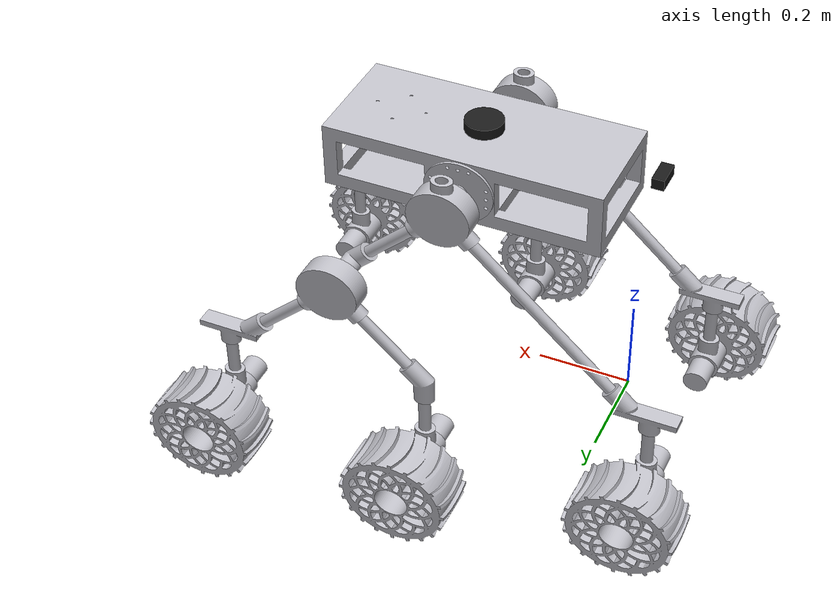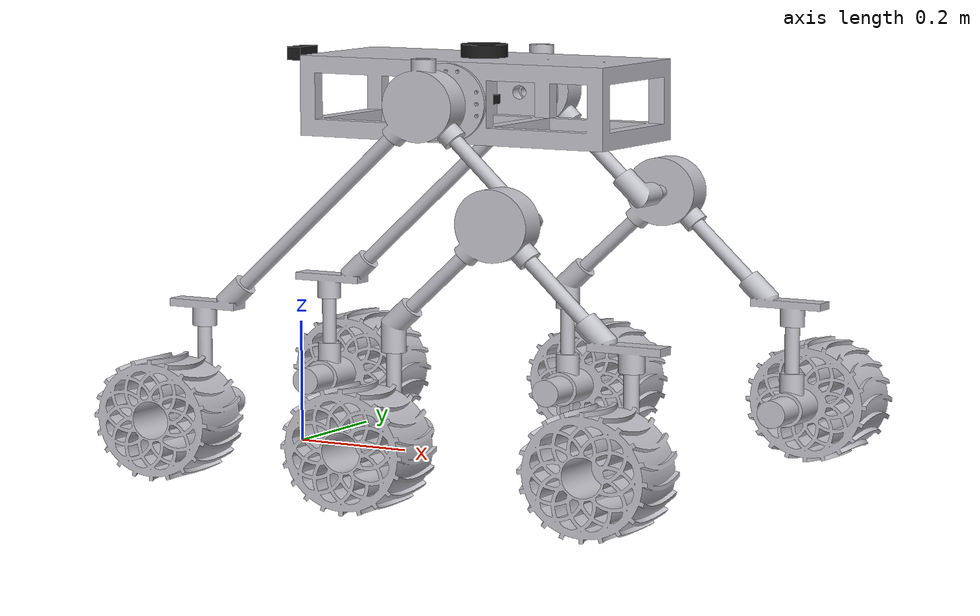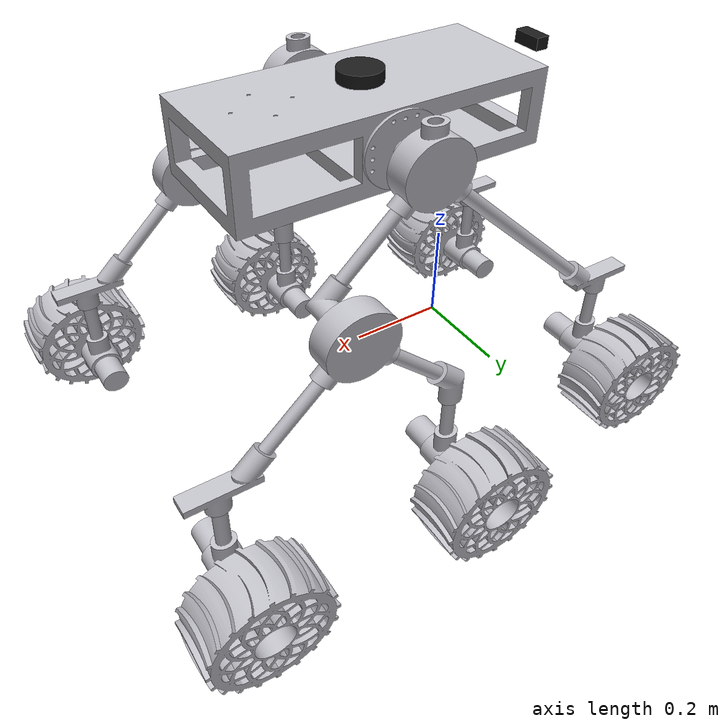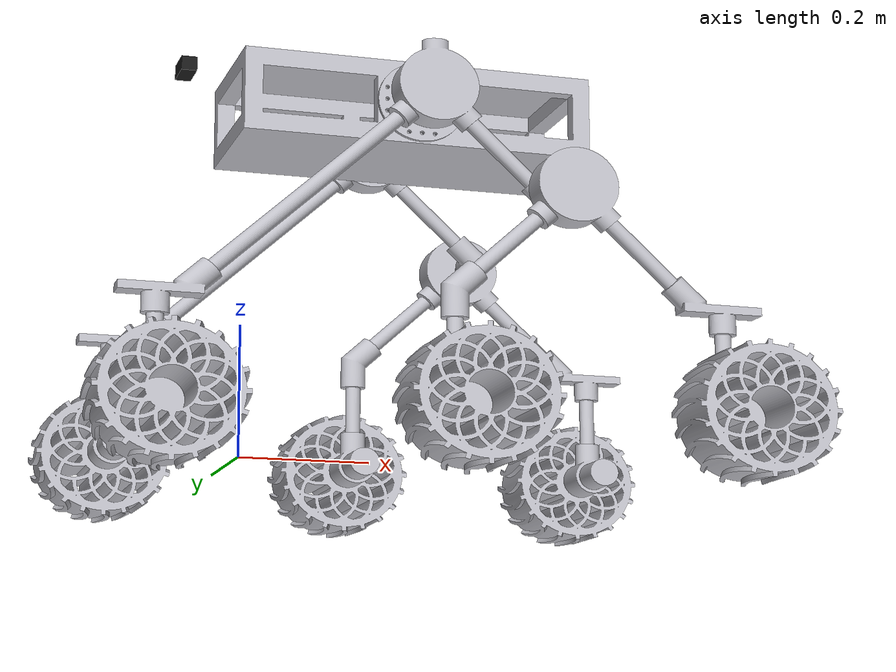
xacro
<?xml version="1.0" ?>
<robot name="ensamblajeurdf" xmlns:xacro="http://www.ros.org/wiki/xacro">

<xacro:include filename="$(find rocker_bogie)/urdf/materials.xacro" />
<xacro:include filename="$(find rocker_bogie)/urdf/ensamblajeurdf.trans" />
<xacro:include filename="$(find rocker_bogie)/urdf/ensamblajeurdf.gazebo" />
<link name="base_link">
  <inertial>
    <origin xyz="0.283293 0.116408 0.574618" rpy="0 0 0"/>
    <mass value="33.855"/>
    <inertia ixx="0.393878" iyy="0.982600" izz="1.193148" ixy="0" iyz="0" ixz="2.63e-05"/>
  </inertial>
  <visual>
    <origin xyz="0 0 0" rpy="0 0 0"/>
    <geometry>
      <mesh filename="package://rocker_bogie/meshes/base_link.stl" scale="0.001417 0.001164 0.001275"/>
    </geometry>
    <material name="silver"/>
  </visual>
  <collision>
    <origin xyz="0.283 0.116 0.575" rpy="0 0 0"/>
    <geometry>
      <box size="0.60 0.25 0.12"/>
    </geometry>
  </collision>
</link>

<link name="AcopleRB_1_1">
  <inertial>
    <origin xyz="0 0.0042 -0.051" rpy="0 0 0"/>
    <mass value="1.60747"/>
    <inertia ixx="0.001525" iyy="0.002987" izz="0.001525" ixy="0" iyz="0" ixz="0"/>
  </inertial>
  <visual>
    <origin xyz="-0.283305 -0.232815 -0.627665" rpy="0 0 0"/>
    <geometry>
      <mesh filename="package://rocker_bogie/meshes/AcopleRB_1_1.stl" scale="0.001417 0.001164 0.001275"/>
    </geometry>
    <material name="silver"/>
  </visual>
</link>

<link name="AcopleRB_2_1">
  <inertial>
    <origin xyz="0 -0.0042 -0.051" rpy="0 0 0"/>
    <mass value="1.60747"/>
    <inertia ixx="0.001525" iyy="0.002987" izz="0.001525" ixy="0" iyz="0" ixz="0"/>
  </inertial>
  <visual>
    <origin xyz="-0.283305 0 -0.627665" rpy="0 0 0"/>
    <geometry>
      <mesh filename="package://rocker_bogie/meshes/AcopleRB_2_1.stl" scale="0.001417 0.001164 0.001275"/>
    </geometry>
    <material name="silver"/>
  </visual>
</link>

<link name="Barra_acople_1_1">
  <inertial>
    <origin xyz="0 -0.015133 0" rpy="0 0 0"/>
    <mass value="0.100807"/>
    <inertia ixx="1.597336875e-05" iyy="7.9867125e-06" izz="1.597336875e-05" ixy="0" iyz="0" ixz="0"/>
  </inertial>
  <visual>
    <origin xyz="-0.283305 0.022117 -0.576664" rpy="0 0 0"/>
    <geometry>
      <mesh filename="package://rocker_bogie/meshes/Barra_acople_1_1.stl" scale="0.001417 0.001164 0.001275"/>
    </geometry>
    <material name="silver"/>
  </visual>
</link>

<link name="Barra_acople_2_1">
  <inertial>
    <origin xyz="0 0.015133 0" rpy="0 0 0"/>
    <mass value="0.100807"/>
    <inertia ixx="1.597336875e-05" iyy="7.9867125e-06" izz="1.597336875e-05" ixy="0" iyz="0" ixz="0"/>
  </inertial>
  <visual>
    <origin xyz="-0.283305 -0.254932 -0.576664" rpy="0 0 0"/>
    <geometry>
      <mesh filename="package://rocker_bogie/meshes/Barra_acople_2_1.stl" scale="0.001417 0.001164 0.001275"/>
    </geometry>
    <material name="silver"/>
  </visual>
</link>

<link name="BarraBR_1_1">
  <inertial>
    <origin xyz="-0.142734 0 -0.128473" rpy="0 0 0"/>
    <mass value="1.105"/>
    <inertia ixx="0.006166" iyy="0.01222" izz="0.006166" ixy="0" iyz="0" ixz="-0.006054"/>
  </inertial>
  <visual>
    <origin xyz="-0.22421 0.075665 -0.523473" rpy="0 0 0"/>
    <geometry>
      <mesh filename="package://rocker_bogie/meshes/BarraBR_1_1.stl" scale="0.001417 0.001164 0.001275"/>
    </geometry>
    <material name="silver"/>
  </visual>
</link>

<link name="BarraBR_2_1">
  <inertial>
    <origin xyz="-0.142734 0 -0.128473" rpy="0 0 0"/>
    <mass value="1.105"/>
    <inertia ixx="0.006166" iyy="0.01222" izz="0.006166" ixy="0" iyz="0" ixz="-0.006054"/>
  </inertial>
  <visual>
    <origin xyz="-0.22421 -0.30848 -0.523473" rpy="0 0 0"/>
    <geometry>
      <mesh filename="package://rocker_bogie/meshes/BarraBR_2_1.stl" scale="0.001417 0.001164 0.001275"/>
    </geometry>
    <material name="silver"/>
  </visual>
</link>

<link name="BarraAcople1_1">
  <inertial>
    <origin xyz="0.048079 0 -0.043275" rpy="0 0 0"/>
    <mass value="0.37221"/>
    <inertia ixx="0.000264" iyy="0.000487" izz="0.000264" ixy="0" iyz="0" ixz="0.000224"/>
  </inertial>
  <visual>
    <origin xyz="-0.342401 0.075665 -0.523473" rpy="0 0 0"/>
    <geometry>
      <mesh filename="package://rocker_bogie/meshes/BarraAcople1_1.stl" scale="0.001417 0.001164 0.001275"/>
    </geometry>
    <material name="silver"/>
  </visual>
</link>

<link name="BarraAcople2_1">
  <inertial>
    <origin xyz="0.048079 0 -0.043275" rpy="0 0 0"/>
    <mass value="0.37221"/>
    <inertia ixx="0.000264" iyy="0.000487" izz="0.000264" ixy="0" iyz="0" ixz="0.000224"/>
  </inertial>
  <visual>
    <origin xyz="-0.342401 -0.30848 -0.523473" rpy="0 0 0"/>
    <geometry>
      <mesh filename="package://rocker_bogie/meshes/BarraAcople2_1.stl" scale="0.001417 0.001164 0.001275"/>
    </geometry>
    <material name="silver"/>
  </visual>
</link>

<link name="AcopleTubo90_1_1">
  <inertial>
    <origin xyz="0.027232 -0.00793 -0.024511" rpy="0 0 0"/>
    <mass value="0.160204"/>
    <inertia ixx="0.00008" iyy="0.000072" izz="0.00008" ixy="7.9867125e-06" iyz="-7.9867125e-06" ixz="1.597336875e-05"/>
  </inertial>
  <visual>
    <origin xyz="-0.438558 0.075665 -0.436922" rpy="0 0 0"/>
    <geometry>
      <mesh filename="package://rocker_bogie/meshes/AcopleTubo90_1_1.stl" scale="0.001417 0.001164 0.001275"/>
    </geometry>
    <material name="silver"/>
  </visual>
</link>

<link name="AcopleTubo90__2_1">
  <inertial>
    <origin xyz="0.027232 0.00793 -0.024511" rpy="0 0 0"/>
    <mass value="0.160204"/>
    <inertia ixx="0.00008" iyy="0.000072" izz="0.00008" ixy="-7.9867125e-06" iyz="7.9867125e-06" ixz="1.597336875e-05"/>
  </inertial>
  <visual>
    <origin xyz="-0.438558 -0.30848 -0.436922" rpy="0 0 0"/>
    <geometry>
      <mesh filename="package://rocker_bogie/meshes/AcopleTubo90__2_1.stl" scale="0.001417 0.001164 0.001275"/>
    </geometry>
    <material name="silver"/>
  </visual>
</link>

<link name="Barra_Acople_R_1_1">
  <inertial>
    <origin xyz="2.5730363188947406e-07 -0.015133 -2.31596427989478e-07" rpy="0 0 0"/>
    <mass value="0.100807"/>
    <inertia ixx="1.597336875e-05" iyy="7.9867125e-06" izz="1.597336875e-05" ixy="0" iyz="0" ixz="0"/>
  </inertial>
  <visual>
    <origin xyz="-0.472614 0.115243 -0.40627" rpy="0 0 0"/>
    <geometry>
      <mesh filename="package://rocker_bogie/meshes/Barra_Acople_R_1_1.stl" scale="0.001417 0.001164 0.001275"/>
    </geometry>
    <material name="silver"/>
  </visual>
</link>

<link name="Barra_Acople_R_2_1">
  <inertial>
    <origin xyz="2.5730363188947406e-07 0.015133 -2.31596427989478e-07" rpy="0 0 0"/>
    <mass value="0.100807"/>
    <inertia ixx="1.597336875e-05" iyy="7.9867125e-06" izz="1.597336875e-05" ixy="0" iyz="0" ixz="0"/>
  </inertial>
  <visual>
    <origin xyz="-0.472614 -0.348058 -0.40627" rpy="0 0 0"/>
    <geometry>
      <mesh filename="package://rocker_bogie/meshes/Barra_Acople_R_2_1.stl" scale="0.001417 0.001164 0.001275"/>
    </geometry>
    <material name="silver"/>
  </visual>
</link>

<link name="Acople_Rodamiento_1_1">
  <inertial>
    <origin xyz="2.5730363188947406e-07 -0.023282 -0.002333" rpy="0 0 0"/>
    <mass value="1.39525"/>
    <inertia ixx="0.001533" iyy="0.002484" izz="0.001541" ixy="0" iyz="0" ixz="0"/>
  </inertial>
  <visual>
    <origin xyz="-0.472614 0.145509 -0.40627" rpy="0 0 0"/>
    <geometry>
      <mesh filename="package://rocker_bogie/meshes/Acople_Rodamiento_1_1.stl" scale="0.001417 0.001164 0.001275"/>
    </geometry>
    <material name="silver"/>
  </visual>
</link>

<link name="Acople_Rodamiento_2_1">
  <inertial>
    <origin xyz="2.5730363188947406e-07 0.023282 -0.002333" rpy="0 0 0"/>
    <mass value="1.39525"/>
    <inertia ixx="0.001533" iyy="0.002484" izz="0.001541" ixy="0" iyz="0" ixz="0"/>
  </inertial>
  <visual>
    <origin xyz="-0.472614 -0.378324 -0.40627" rpy="0 0 0"/>
    <geometry>
      <mesh filename="package://rocker_bogie/meshes/Acople_Rodamiento_2_1.stl" scale="0.001417 0.001164 0.001275"/>
    </geometry>
    <material name="silver"/>
  </visual>
</link>

<link name="BarraAcople3_1">
  <inertial>
    <origin xyz="-0.048079 0 -0.043276" rpy="0 0 0"/>
    <mass value="0.37221"/>
    <inertia ixx="0.000264" iyy="0.000487" izz="0.000264" ixy="0" iyz="0" ixz="-0.000224"/>
  </inertial>
  <visual>
    <origin xyz="-0.413518 -0.401606 -0.353078" rpy="0 0 0"/>
    <geometry>
      <mesh filename="package://rocker_bogie/meshes/BarraAcople3_1.stl" scale="0.001417 0.001164 0.001275"/>
    </geometry>
    <material name="silver"/>
  </visual>
</link>

<link name="BarraAcople4_1">
  <inertial>
    <origin xyz="-0.048079 0 -0.043276" rpy="0 0 0"/>
    <mass value="0.37221"/>
    <inertia ixx="0.000264" iyy="0.000487" izz="0.000264" ixy="0" iyz="0" ixz="-0.000224"/>
  </inertial>
  <visual>
    <origin xyz="-0.413518 0.168791 -0.353078" rpy="0 0 0"/>
    <geometry>
      <mesh filename="package://rocker_bogie/meshes/BarraAcople4_1.stl" scale="0.001417 0.001164 0.001275"/>
    </geometry>
    <material name="silver"/>
  </visual>
</link>

<link name="BarraAcople5_1">
  <inertial>
    <origin xyz="0.04808 0 -0.043276" rpy="0 0 0"/>
    <mass value="0.37221"/>
    <inertia ixx="0.000264" iyy="0.000487" izz="0.000264" ixy="0" iyz="0" ixz="0.000224"/>
  </inertial>
  <visual>
    <origin xyz="-0.531709 0.168791 -0.353078" rpy="0 0 0"/>
    <geometry>
      <mesh filename="package://rocker_bogie/meshes/BarraAcople5_1.stl" scale="0.001417 0.001164 0.001275"/>
    </geometry>
    <material name="silver"/>
  </visual>
</link>

<link name="BarraAcople6_1">
  <inertial>
    <origin xyz="0.04808 0 -0.043276" rpy="0 0 0"/>
    <mass value="0.37221"/>
    <inertia ixx="0.000264" iyy="0.000487" izz="0.000264" ixy="0" iyz="0" ixz="0.000224"/>
  </inertial>
  <visual>
    <origin xyz="-0.531709 -0.401606 -0.353078" rpy="0 0 0"/>
    <geometry>
      <mesh filename="package://rocker_bogie/meshes/BarraAcople6_1.stl" scale="0.001417 0.001164 0.001275"/>
    </geometry>
    <material name="silver"/>
  </visual>
</link>

<link name="AcopleTubo135_1_1">
  <inertial>
    <origin xyz="-0.026766 0 -0.033371" rpy="0 0 0"/>
    <mass value="0.160204"/>
    <inertia ixx="0.000096" iyy="0.000112" izz="5.5906874999999997e-05" ixy="0" iyz="0" ixz="-2.396008125e-05"/>
  </inertial>
  <visual>
    <origin xyz="-0.31736 0.168791 -0.266528" rpy="0 0 0"/>
    <geometry>
      <mesh filename="package://rocker_bogie/meshes/AcopleTubo135_1_1.stl" scale="0.001417 0.001164 0.001275"/>
    </geometry>
    <material name="silver"/>
  </visual>
</link>

<link name="AcopleTubo135_2_1">
  <inertial>
    <origin xyz="-0.026766 0 -0.033371" rpy="0 0 0"/>
    <mass value="0.160204"/>
    <inertia ixx="0.000096" iyy="0.000112" izz="5.5906874999999997e-05" ixy="0" iyz="0" ixz="-2.396008125e-05"/>
  </inertial>
  <visual>
    <origin xyz="-0.31736 -0.401606 -0.266528" rpy="0 0 0"/>
    <geometry>
      <mesh filename="package://rocker_bogie/meshes/AcopleTubo135_2_1.stl" scale="0.001417 0.001164 0.001275"/>
    </geometry>
    <material name="silver"/>
  </visual>
</link>

<link name="ApoyoServomotor_1_1">
  <inertial>
    <origin xyz="-0.061254 0 -0.034916" rpy="0 0 0"/>
    <mass value="0.27687"/>
    <inertia ixx="0.000112" iyy="0.000415" izz="0.000367" ixy="0" iyz="0" ixz="-0.000096"/>
  </inertial>
  <visual>
    <origin xyz="0.061257 0.075665 -0.266528" rpy="0 0 0"/>
    <geometry>
      <mesh filename="package://rocker_bogie/meshes/ApoyoServomotor_1_1.stl" scale="0.001417 0.001164 0.001275"/>
    </geometry>
    <material name="silver"/>
  </visual>
</link>

<link name="ApoyoServomotor_2_1">
  <inertial>
    <origin xyz="-0.061254 0 -0.034916" rpy="0 0 0"/>
    <mass value="0.27687"/>
    <inertia ixx="0.000112" iyy="0.000415" izz="0.000367" ixy="0" iyz="0" ixz="-0.000096"/>
  </inertial>
  <visual>
    <origin xyz="0.061257 -0.30848 -0.266528" rpy="0 0 0"/>
    <geometry>
      <mesh filename="package://rocker_bogie/meshes/ApoyoServomotor_2_1.stl" scale="0.001417 0.001164 0.001275"/>
    </geometry>
    <material name="silver"/>
  </visual>
</link>

<link name="ApoyoServomotor_3_1">
  <inertial>
    <origin xyz="0.061254 0 -0.034916" rpy="0 0 0"/>
    <mass value="0.27687"/>
    <inertia ixx="0.000112" iyy="0.000415" izz="0.000367" ixy="0" iyz="0" ixz="0.000096"/>
  </inertial>
  <visual>
    <origin xyz="-0.627868 -0.401606 -0.266528" rpy="0 0 0"/>
    <geometry>
      <mesh filename="package://rocker_bogie/meshes/ApoyoServomotor_3_1.stl" scale="0.001417 0.001164 0.001275"/>
    </geometry>
    <material name="silver"/>
  </visual>
</link>

<link name="ApoyoServomotor_4_1">
  <inertial>
    <origin xyz="0.061254 0 -0.034916" rpy="0 0 0"/>
    <mass value="0.27687"/>
    <inertia ixx="0.000112" iyy="0.000415" izz="0.000367" ixy="0" iyz="0" ixz="0.000096"/>
  </inertial>
  <visual>
    <origin xyz="-0.627868 0.168791 -0.266528" rpy="0 0 0"/>
    <geometry>
      <mesh filename="package://rocker_bogie/meshes/ApoyoServomotor_4_1.stl" scale="0.001417 0.001164 0.001275"/>
    </geometry>
    <material name="silver"/>
  </visual>
</link>

<link name="BarraRuedas_1_1">
  <inertial>
    <origin xyz="-5.1460726387724e-07 0 -0.039525" rpy="0 0 0"/>
    <mass value="0.240385"/>
    <inertia ixx="0.000136" iyy="0.000136" izz="2.396008125e-05" ixy="0" iyz="0" ixz="0"/>
  </inertial>
  <visual>
    <origin xyz="0.143315 0.075665 -0.192525" rpy="0 0 0"/>
    <geometry>
      <mesh filename="package://rocker_bogie/meshes/BarraRuedas_1_1.stl" scale="0.001417 0.001164 0.001275"/>
    </geometry>
    <material name="silver"/>
  </visual>
</link>

<link name="BarraRuedas_2_1">
  <inertial>
    <origin xyz="0 0 -0.039525" rpy="0 0 0"/>
    <mass value="0.240385"/>
    <inertia ixx="0.000136" iyy="0.000136" izz="2.396008125e-05" ixy="0" iyz="0" ixz="0"/>
  </inertial>
  <visual>
    <origin xyz="-0.283305 0.168791 -0.192525" rpy="0 0 0"/>
    <geometry>
      <mesh filename="package://rocker_bogie/meshes/BarraRuedas_2_1.stl" scale="0.001417 0.001164 0.001275"/>
    </geometry>
    <material name="silver"/>
  </visual>
</link>

<link name="BarraRuedas_3_1">
  <inertial>
    <origin xyz="5.146072640934809e-07 0 -0.039525" rpy="0 0 0"/>
    <mass value="0.240385"/>
    <inertia ixx="0.000136" iyy="0.000136" izz="2.396008125e-05" ixy="0" iyz="0" ixz="0"/>
  </inertial>
  <visual>
    <origin xyz="-0.709925 0.168791 -0.192525" rpy="0 0 0"/>
    <geometry>
      <mesh filename="package://rocker_bogie/meshes/BarraRuedas_3_1.stl" scale="0.001417 0.001164 0.001275"/>
    </geometry>
    <material name="silver"/>
  </visual>
</link>

<link name="BarraRuedas_4_1">
  <inertial>
    <origin xyz="-5.146072639558729e-07 0 -0.039525" rpy="0 0 0"/>
    <mass value="0.240385"/>
    <inertia ixx="0.000136" iyy="0.000136" izz="2.396008125e-05" ixy="0" iyz="0" ixz="0"/>
  </inertial>
  <visual>
    <origin xyz="0.143315 -0.30848 -0.192525" rpy="0 0 0"/>
    <geometry>
      <mesh filename="package://rocker_bogie/meshes/BarraRuedas_4_1.stl" scale="0.001417 0.001164 0.001275"/>
    </geometry>
    <material name="silver"/>
  </visual>
</link>

<link name="BarraRuedas_5_1">
  <inertial>
    <origin xyz="0 0 -0.039525" rpy="0 0 0"/>
    <mass value="0.240385"/>
    <inertia ixx="0.000136" iyy="0.000136" izz="2.396008125e-05" ixy="0" iyz="0" ixz="0"/>
  </inertial>
  <visual>
    <origin xyz="-0.283305 -0.401606 -0.192525" rpy="0 0 0"/>
    <geometry>
      <mesh filename="package://rocker_bogie/meshes/BarraRuedas_5_1.stl" scale="0.001417 0.001164 0.001275"/>
    </geometry>
    <material name="silver"/>
  </visual>
</link>

<link name="BarraRuedas_6_1">
  <inertial>
    <origin xyz="5.14607263778949e-07 0 -0.039525" rpy="0 0 0"/>
    <mass value="0.240385"/>
    <inertia ixx="0.000136" iyy="0.000136" izz="2.396008125e-05" ixy="0" iyz="0" ixz="0"/>
  </inertial>
  <visual>
    <origin xyz="-0.709925 -0.401606 -0.192525" rpy="0 0 0"/>
    <geometry>
      <mesh filename="package://rocker_bogie/meshes/BarraRuedas_6_1.stl" scale="0.001417 0.001164 0.001275"/>
    </geometry>
    <material name="silver"/>
  </visual>
</link>

<link name="SoporteMotor_1_1">
  <inertial>
    <origin xyz="-5.146072897081591e-07 -0.004389 -0.047494" rpy="0 0 0"/>
    <mass value="0.21391"/>
    <inertia ixx="0.000208" iyy="0.0002" izz="0.000136" ixy="0" iyz="-7.9867125e-06" ixz="0"/>
  </inertial>
  <visual>
    <origin xyz="0.143315 0.075665 -0.113475" rpy="0 0 0"/>
    <geometry>
      <mesh filename="package://rocker_bogie/meshes/SoporteMotor_1_1.stl" scale="0.001417 0.001164 0.001275"/>
    </geometry>
    <material name="silver"/>
  </visual>
</link>

<link name="SoporteMotor_2_1">
  <inertial>
    <origin xyz="0 -0.004389 -0.047494" rpy="0 0 0"/>
    <mass value="0.21391"/>
    <inertia ixx="0.000208" iyy="0.0002" izz="0.000136" ixy="0" iyz="-7.9867125e-06" ixz="0"/>
  </inertial>
  <visual>
    <origin xyz="-0.283305 0.168791 -0.113475" rpy="0 0 0"/>
    <geometry>
      <mesh filename="package://rocker_bogie/meshes/SoporteMotor_2_1.stl" scale="0.001417 0.001164 0.001275"/>
    </geometry>
    <material name="silver"/>
  </visual>
</link>

<link name="SoporteMotor_4_1">
  <inertial>
    <origin xyz="5.146072383018786e-07 -0.004389 -0.047494" rpy="0 0 0"/>
    <mass value="0.21391"/>
    <inertia ixx="0.000208" iyy="0.0002" izz="0.000136" ixy="0" iyz="-7.9867125e-06" ixz="0"/>
  </inertial>
  <visual>
    <origin xyz="-0.709925 0.168791 -0.113475" rpy="0 0 0"/>
    <geometry>
      <mesh filename="package://rocker_bogie/meshes/SoporteMotor_4_1.stl" scale="0.001417 0.001164 0.001275"/>
    </geometry>
    <material name="silver"/>
  </visual>
</link>

<link name="SoporteMotor_3_1">
  <inertial>
    <origin xyz="-5.146072376924728e-07 0.004389 -0.047494" rpy="0 0 0"/>
    <mass value="0.21391"/>
    <inertia ixx="0.000208" iyy="0.0002" izz="0.000136" ixy="0" iyz="7.9867125e-06" ixz="0"/>
  </inertial>
  <visual>
    <origin xyz="0.143315 -0.30848 -0.113475" rpy="0 0 0"/>
    <geometry>
      <mesh filename="package://rocker_bogie/meshes/SoporteMotor_3_1.stl" scale="0.001417 0.001164 0.001275"/>
    </geometry>
    <material name="silver"/>
  </visual>
</link>

<link name="SoporteMotor_5_1">
  <inertial>
    <origin xyz="0 0.004389 -0.047494" rpy="0 0 0"/>
    <mass value="0.21391"/>
    <inertia ixx="0.000208" iyy="0.0002" izz="0.000136" ixy="0" iyz="7.9867125e-06" ixz="0"/>
  </inertial>
  <visual>
    <origin xyz="-0.283305 -0.401606 -0.113475" rpy="0 0 0"/>
    <geometry>
      <mesh filename="package://rocker_bogie/meshes/SoporteMotor_5_1.stl" scale="0.001417 0.001164 0.001275"/>
    </geometry>
    <material name="silver"/>
  </visual>
</link>

<link name="SoporteMotor_6_1">
  <inertial>
    <origin xyz="5.146072897278172e-07 0.004389 -0.047494" rpy="0 0 0"/>
    <mass value="0.21391"/>
    <inertia ixx="0.000208" iyy="0.0002" izz="0.000136" ixy="0" iyz="7.9867125e-06" ixz="0"/>
  </inertial>
  <visual>
    <origin xyz="-0.709925 -0.401606 -0.113475" rpy="0 0 0"/>
    <geometry>
      <mesh filename="package://rocker_bogie/meshes/SoporteMotor_6_1.stl" scale="0.001417 0.001164 0.001275"/>
    </geometry>
    <material name="silver"/>
  </visual>
</link>

<link name="Motor_1_1">
  <inertial>
    <origin xyz="-5.146072487797164e-07 0.054562 -4.63192856651334e-07" rpy="0 0 0"/>
    <mass value="3.81127"/>
    <inertia ixx="0.005415" iyy="0.00099" izz="0.005415" ixy="0" iyz="0" ixz="0"/>
  </inertial>
  <visual>
    <origin xyz="0.143315 0.107095 -0.054825" rpy="0 0 0"/>
    <geometry>
      <mesh filename="package://rocker_bogie/meshes/Motor_1_1.stl" scale="0.001417 0.001164 0.001275"/>
    </geometry>
    <material name="silver"/>
  </visual>
</link>

<link name="Motor_2_1">
  <inertial>
    <origin xyz="0 0.054562 -4.6319285642130973e-07" rpy="0 0 0"/>
    <mass value="3.81127"/>
    <inertia ixx="0.005415" iyy="0.00099" izz="0.005415" ixy="0" iyz="0" ixz="0"/>
  </inertial>
  <visual>
    <origin xyz="-0.283305 0.200221 -0.054825" rpy="0 0 0"/>
    <geometry>
      <mesh filename="package://rocker_bogie/meshes/Motor_2_1.stl" scale="0.001417 0.001164 0.001275"/>
    </geometry>
    <material name="silver"/>
  </visual>
</link>

<link name="Motor_3_1">
  <inertial>
    <origin xyz="5.146072791910043e-07 0.054562 -4.6319285629745096e-07" rpy="0 0 0"/>
    <mass value="3.81127"/>
    <inertia ixx="0.005415" iyy="0.00099" izz="0.005415" ixy="0" iyz="0" ixz="0"/>
  </inertial>
  <visual>
    <origin xyz="-0.709925 0.200221 -0.054825" rpy="0 0 0"/>
    <geometry>
      <mesh filename="package://rocker_bogie/meshes/Motor_3_1.stl" scale="0.001417 0.001164 0.001275"/>
    </geometry>
    <material name="silver"/>
  </visual>
</link>

<link name="Motor_6_1">
  <inertial>
    <origin xyz="-5.146072789354465e-07 -0.054562 -4.6319285612050874e-07" rpy="0 0 0"/>
    <mass value="3.81127"/>
    <inertia ixx="0.005415" iyy="0.00099" izz="0.005415" ixy="0" iyz="0" ixz="0"/>
  </inertial>
  <visual>
    <origin xyz="0.143315 -0.33991 -0.054825" rpy="0 0 0"/>
    <geometry>
      <mesh filename="package://rocker_bogie/meshes/Motor_6_1.stl" scale="0.001417 0.001164 0.001275"/>
    </geometry>
    <material name="silver"/>
  </visual>
</link>

<link name="Motor_5_1">
  <inertial>
    <origin xyz="0 -0.054562 -4.6319285617359156e-07" rpy="0 0 0"/>
    <mass value="3.81127"/>
    <inertia ixx="0.005415" iyy="0.00099" izz="0.005415" ixy="0" iyz="0" ixz="0"/>
  </inertial>
  <visual>
    <origin xyz="-0.283305 -0.433036 -0.054825" rpy="0 0 0"/>
    <geometry>
      <mesh filename="package://rocker_bogie/meshes/Motor_5_1.stl" scale="0.001417 0.001164 0.001275"/>
    </geometry>
    <material name="silver"/>
  </visual>
</link>

<link name="Motor_4_1">
  <inertial>
    <origin xyz="5.146072486814256e-07 -0.054562 -4.631928563682277e-07" rpy="0 0 0"/>
    <mass value="3.81127"/>
    <inertia ixx="0.005415" iyy="0.00099" izz="0.005415" ixy="0" iyz="0" ixz="0"/>
  </inertial>
  <visual>
    <origin xyz="-0.709925 -0.433036 -0.054825" rpy="0 0 0"/>
    <geometry>
      <mesh filename="package://rocker_bogie/meshes/Motor_4_1.stl" scale="0.001417 0.001164 0.001275"/>
    </geometry>
    <material name="silver"/>
  </visual>
</link>

<link name="Rueda_2_1">
  <inertial>
    <origin xyz="-0.000463 -0.052315 0.000324" rpy="0 0 0"/>
    <mass value="2.6357"/>
    <inertia ixx="0.007449" iyy="0.015036" izz="0.007449" ixy="0.0" iyz="0.0" ixz="0.0"/>
  </inertial>
  <visual>
    <origin xyz="-1.296759 0.406102 -0.1001" rpy="0 0 0"/>
    <geometry>
      <mesh filename="package://rocker_bogie/meshes/Rueda_2_1.stl" scale="0.002588 0.002126 0.002329"/>
    </geometry>
    <material name="silver"/>
  </visual>
  <collision>
    <origin xyz="0 -0.052315 0" rpy="1.5707963 0 0"/>
    <geometry>
      <cylinder radius="0.178" length="0.1143"/>
    </geometry>
  </collision>
</link>

<link name="Rueda_4_1">
  <inertial>
    <origin xyz="-0.000464 -0.052315 0.000324" rpy="0 0 0"/>
    <mass value="2.6357"/>
    <inertia ixx="0.007449" iyy="0.015036" izz="0.007449" ixy="0.0" iyz="0.0" ixz="0.0"/>
  </inertial>
  <visual>
    <origin xyz="-0.517504 0.406102 -0.1001" rpy="0 0 0"/>
    <geometry>
      <mesh filename="package://rocker_bogie/meshes/Rueda_4_1.stl" scale="0.002588 0.002126 0.002329"/>
    </geometry>
    <material name="silver"/>
  </visual>
  <collision>
    <origin xyz="0 -0.052315 0" rpy="1.5707963 0 0"/>
    <geometry>
      <cylinder radius="0.178" length="0.1143"/>
    </geometry>
  </collision>
</link>

<link name="Rueda_6_1">
  <inertial>
    <origin xyz="-0.000466 -0.052315 0.000324" rpy="0 0 0"/>
    <mass value="2.6357"/>
    <inertia ixx="0.007449" iyy="0.015036" izz="0.007449" ixy="0.0" iyz="0.0" ixz="0.0"/>
  </inertial>
  <visual>
    <origin xyz="0.261752 0.236011 -0.1001" rpy="0 0 0"/>
    <geometry>
      <mesh filename="package://rocker_bogie/meshes/Rueda_6_1.stl" scale="0.002588 0.002126 0.002329"/>
    </geometry>
    <material name="silver"/>
  </visual>
  <collision>
    <origin xyz="0 -0.052315 0" rpy="1.5707963 0 0"/>
    <geometry>
      <cylinder radius="0.178" length="0.1143"/>
    </geometry>
  </collision>
</link>

<link name="Rueda_1_1">
  <inertial>
    <origin xyz="0.000463 0.052315 0.000324" rpy="0 0 0"/>
    <mass value="2.6357"/>
    <inertia ixx="0.007449" iyy="0.015036" izz="0.007449" ixy="0.0" iyz="0.0" ixz="0.0"/>
  </inertial>
  <visual>
    <origin xyz="0.261752 -0.661286 -0.1001" rpy="0 0 0"/>
    <geometry>
      <mesh filename="package://rocker_bogie/meshes/Rueda_1_1.stl" scale="0.002588 0.002126 0.002329"/>
    </geometry>
    <material name="silver"/>
  </visual>
  <collision>
    <origin xyz="0 0.052315 0" rpy="1.5707963 0 0"/>
    <geometry>
      <cylinder radius="0.178" length="0.1143"/>
    </geometry>
  </collision>
</link>

<link name="Rueda_3_1">
  <inertial>
    <origin xyz="0.000464 0.052315 0.000324" rpy="0 0 0"/>
    <mass value="2.6357"/>
    <inertia ixx="0.007449" iyy="0.015036" izz="0.007449" ixy="0.0" iyz="0.0" ixz="0.0"/>
  </inertial>
  <visual>
    <origin xyz="-0.517504 -0.831378 -0.1001" rpy="0 0 0"/>
    <geometry>
      <mesh filename="package://rocker_bogie/meshes/Rueda_3_1.stl" scale="0.002588 0.002126 0.002329"/>
    </geometry>
    <material name="silver"/>
  </visual>
  <collision>
    <origin xyz="0 0.052315 0" rpy="1.5707963 0 0"/>
    <geometry>
      <cylinder radius="0.178" length="0.1143"/>
    </geometry>
  </collision>
</link>

<link name="Rueda_5_1">
  <inertial>
    <origin xyz="0.000466 0.052315 0.000324" rpy="0 0 0"/>
    <mass value="2.6357"/>
    <inertia ixx="0.007449" iyy="0.015036" izz="0.007449" ixy="0.0" iyz="0.0" ixz="0.0"/>
  </inertial>
  <visual>
    <origin xyz="-1.296759 -0.831378 -0.1001" rpy="0 0 0"/>
    <geometry>
      <mesh filename="package://rocker_bogie/meshes/Rueda_5_1.stl" scale="0.002588 0.002126 0.002329"/>
    </geometry>
    <material name="silver"/>
  </visual>
  <collision>
    <origin xyz="0 0.052315 0" rpy="1.5707963 0 0"/>
    <geometry>
      <cylinder radius="0.178" length="0.1143"/>
    </geometry>
  </collision>
</link>

<link name="AcopleTuboRB_2_1">
  <inertial>
    <origin xyz="0 -0.023282 -0.000667" rpy="0 0 0"/>
    <mass value="1.43027"/>
    <inertia ixx="0.001701" iyy="0.002652" izz="0.001549" ixy="0" iyz="0" ixz="0"/>
  </inertial>
  <visual>
    <origin xyz="-0.283305 0.052383 -0.576664" rpy="0 0 0"/>
    <geometry>
      <mesh filename="package://rocker_bogie/meshes/AcopleTuboRB_2_1.stl" scale="0.001417 0.001164 0.001275"/>
    </geometry>
    <material name="silver"/>
  </visual>
</link>

<link name="AcopleTuboRB_1_1">
  <inertial>
    <origin xyz="0 0.023282 -0.000667" rpy="0 0 0"/>
    <mass value="1.43027"/>
    <inertia ixx="0.001701" iyy="0.002652" izz="0.001549" ixy="0" iyz="0" ixz="0"/>
  </inertial>
  <visual>
    <origin xyz="-0.283305 -0.285198 -0.576664" rpy="0 0 0"/>
    <geometry>
      <mesh filename="package://rocker_bogie/meshes/AcopleTuboRB_1_1.stl" scale="0.001417 0.001164 0.001275"/>
    </geometry>
    <material name="silver"/>
  </visual>
</link>

<!-- ================= DIFFERENTIAL BAR (connects to base_link) ================= -->
<!-- Differential pivot: AcopleTuboRB_1_1 pivots on base_link around Y axis -->
<joint name="differential_joint" type="revolute">
  <origin xyz="0.283305 0.285198 0.576664" rpy="0 0 0"/>
  <parent link="base_link"/>
  <child link="AcopleTuboRB_1_1"/>
  <axis xyz="0.0 1.0 0.0"/>
  <limit lower="-0.15" upper="0.15" effort="100" velocity="0.5"/>
  <dynamics damping="80.0" friction="6.0"/>
</joint>

<!-- Other end of differential bar (rigid) -->
<joint name="differential_bar_joint" type="fixed">
  <origin xyz="0 -0.337582 0" rpy="0 0 0"/>
  <parent link="AcopleTuboRB_1_1"/>
  <child link="AcopleTuboRB_2_1"/>
</joint>

<!-- ================= ROCKER ARMS (hang from differential) ================= -->
<!-- Right rocker: AcopleTuboRB_1_1 → Barra_acople_2_1 (revolute) → AcopleRB_1_1 (fixed) -->
<joint name="rocker_joint_r" type="revolute">
  <origin xyz="0 -0.030266 0" rpy="0 0 0"/>
  <parent link="AcopleTuboRB_1_1"/>
  <child link="Barra_acople_2_1"/>
  <axis xyz="0.0 1.0 0.0"/>
  <limit lower="-0.45" upper="0.45" effort="100" velocity="1.0"/>
  <dynamics damping="80.0" friction="4.0"/>
</joint>

<joint name="rocker_acople_r" type="fixed">
  <origin xyz="0 -0.022117 0.051" rpy="0 0 0"/>
  <parent link="Barra_acople_2_1"/>
  <child link="AcopleRB_1_1"/>
</joint>

<!-- Left rocker: AcopleTuboRB_2_1 → Barra_acople_1_1 (revolute) → AcopleRB_2_1 (fixed) -->
<joint name="rocker_joint_l" type="revolute">
  <origin xyz="0 0.030266 0" rpy="0 0 0"/>
  <parent link="AcopleTuboRB_2_1"/>
  <child link="Barra_acople_1_1"/>
  <axis xyz="0.0 1.0 0.0"/>
  <limit lower="-0.45" upper="0.45" effort="100" velocity="1.0"/>
  <dynamics damping="80.0" friction="4.0"/>
</joint>

<joint name="rocker_acople_l" type="fixed">
  <origin xyz="0 0.022117 0.051" rpy="0 0 0"/>
  <parent link="Barra_acople_1_1"/>
  <child link="AcopleRB_2_1"/>
</joint>

<joint name="link_r_5" type="fixed">
  <origin xyz="-0.059096 -0.023282 -0.053192" rpy="0 0 0"/>
  <parent link="AcopleTuboRB_2_1"/>
  <child link="BarraBR_1_1"/>
</joint>

<joint name="link_r_6" type="fixed">
  <origin xyz="-0.059096 0.023282 -0.053192" rpy="0 0 0"/>
  <parent link="AcopleTuboRB_1_1"/>
  <child link="BarraBR_2_1"/>
</joint>

<joint name="link_r_7" type="fixed">
  <origin xyz="0.059096 -0.023282 -0.053192" rpy="0 0 0"/>
  <parent link="AcopleTuboRB_2_1"/>
  <child link="BarraAcople1_1"/>
</joint>

<joint name="link_r_8" type="fixed">
  <origin xyz="0.059096 0.023282 -0.053192" rpy="0 0 0"/>
  <parent link="AcopleTuboRB_1_1"/>
  <child link="BarraAcople2_1"/>
</joint>

<joint name="link_r_9" type="fixed">
  <origin xyz="0.096158 0 -0.086551" rpy="0 0 0"/>
  <parent link="BarraAcople1_1"/>
  <child link="AcopleTubo90_1_1"/>
</joint>

<joint name="link_r_10" type="fixed">
  <origin xyz="0.096158 0 -0.086551" rpy="0 0 0"/>
  <parent link="BarraAcople2_1"/>
  <child link="AcopleTubo90__2_1"/>
</joint>

<joint name="link_r_11" type="fixed">
  <origin xyz="0.034054 -0.039579 -0.030652" rpy="0 0 0"/>
  <parent link="AcopleTubo90_1_1"/>
  <child link="Barra_Acople_R_1_1"/>
</joint>

<joint name="link_r_12" type="fixed">
  <origin xyz="0.034054 0.039579 -0.030652" rpy="0 0 0"/>
  <parent link="AcopleTubo90__2_1"/>
  <child link="Barra_Acople_R_2_1"/>
</joint>

<joint name="rev_3" type="revolute">
  <origin xyz="0 -0.030266 0" rpy="0 0 0"/>
  <parent link="Barra_Acople_R_1_1"/>
  <child link="Acople_Rodamiento_1_1"/>
  <axis xyz="-0.0 1.0 -0.0"/>
  <limit lower="-0.5" upper="0.5" effort="100" velocity="1.0"/>
  <dynamics damping="80.0" friction="10.0"/>
</joint>

<joint name="rev_4" type="revolute">
  <origin xyz="0 0.030266 0" rpy="0 0 0"/>
  <parent link="Barra_Acople_R_2_1"/>
  <child link="Acople_Rodamiento_2_1"/>
  <axis xyz="0.0 1.0 0.0"/>
  <limit lower="-0.5" upper="0.5" effort="100" velocity="1.0"/>
  <dynamics damping="80.0" friction="10.0"/>
</joint>

<joint name="link_r_15" type="fixed">
  <origin xyz="-0.059096 0.023282 -0.053192" rpy="0 0 0"/>
  <parent link="Acople_Rodamiento_2_1"/>
  <child link="BarraAcople3_1"/>
</joint>

<joint name="link_r_16" type="fixed">
  <origin xyz="-0.059096 -0.023282 -0.053192" rpy="0 0 0"/>
  <parent link="Acople_Rodamiento_1_1"/>
  <child link="BarraAcople4_1"/>
</joint>

<joint name="link_r_17" type="fixed">
  <origin xyz="0.059096 -0.023282 -0.053192" rpy="0 0 0"/>
  <parent link="Acople_Rodamiento_1_1"/>
  <child link="BarraAcople5_1"/>
</joint>

<joint name="link_r_18" type="fixed">
  <origin xyz="0.059096 0.023282 -0.053192" rpy="0 0 0"/>
  <parent link="Acople_Rodamiento_2_1"/>
  <child link="BarraAcople6_1"/>
</joint>

<joint name="link_r_19" type="fixed">
  <origin xyz="-0.096156 0 -0.086551" rpy="0 0 0"/>
  <parent link="BarraAcople4_1"/>
  <child link="AcopleTubo135_1_1"/>
</joint>

<joint name="link_r_20" type="fixed">
  <origin xyz="-0.096156 0 -0.086551" rpy="0 0 0"/>
  <parent link="BarraAcople3_1"/>
  <child link="AcopleTubo135_2_1"/>
</joint>

<joint name="link_r_21" type="fixed">
  <origin xyz="-0.285466 0 -0.256945" rpy="0 0 0"/>
  <parent link="BarraBR_1_1"/>
  <child link="ApoyoServomotor_1_1"/>
</joint>

<joint name="link_r_22" type="fixed">
  <origin xyz="-0.285466 0 -0.256945" rpy="0 0 0"/>
  <parent link="BarraBR_2_1"/>
  <child link="ApoyoServomotor_2_1"/>
</joint>

<joint name="link_r_23" type="fixed">
  <origin xyz="0.096158 0 -0.086551" rpy="0 0 0"/>
  <parent link="BarraAcople6_1"/>
  <child link="ApoyoServomotor_3_1"/>
</joint>

<joint name="link_r_24" type="fixed">
  <origin xyz="0.096158 0 -0.086551" rpy="0 0 0"/>
  <parent link="BarraAcople5_1"/>
  <child link="ApoyoServomotor_4_1"/>
</joint>

<joint name="rev_5" type="fixed">
  <origin xyz="-0.082056 0 -0.074002" rpy="0 0 0"/>
  <parent link="ApoyoServomotor_1_1"/>
  <child link="BarraRuedas_1_1"/>
</joint>

<joint name="link_r_25" type="fixed">
  <origin xyz="-0.034057 0 -0.074002" rpy="0 0 0"/>
  <parent link="AcopleTubo135_1_1"/>
  <child link="BarraRuedas_2_1"/>
</joint>

<joint name="rev_6" type="fixed">
  <origin xyz="0.082056 0 -0.074002" rpy="0 0 0"/>
  <parent link="ApoyoServomotor_4_1"/>
  <child link="BarraRuedas_3_1"/>
</joint>

<joint name="rev_7" type="fixed">
  <origin xyz="-0.082056 0 -0.074002" rpy="0 0 0"/>
  <parent link="ApoyoServomotor_2_1"/>
  <child link="BarraRuedas_4_1"/>
</joint>

<joint name="link_r_26" type="fixed">
  <origin xyz="-0.034057 0 -0.074002" rpy="0 0 0"/>
  <parent link="AcopleTubo135_2_1"/>
  <child link="BarraRuedas_5_1"/>
</joint>

<joint name="rev_8" type="fixed">
  <origin xyz="0.082056 0 -0.074002" rpy="0 0 0"/>
  <parent link="ApoyoServomotor_3_1"/>
  <child link="BarraRuedas_6_1"/>
</joint>

<joint name="link_r_27" type="fixed">
  <origin xyz="0 0 -0.07905" rpy="0 0 0"/>
  <parent link="BarraRuedas_1_1"/>
  <child link="SoporteMotor_1_1"/>
</joint>

<joint name="link_r_28" type="fixed">
  <origin xyz="0 0 -0.07905" rpy="0 0 0"/>
  <parent link="BarraRuedas_2_1"/>
  <child link="SoporteMotor_2_1"/>
</joint>

<joint name="link_r_29" type="fixed">
  <origin xyz="0 0 -0.07905" rpy="0 0 0"/>
  <parent link="BarraRuedas_3_1"/>
  <child link="SoporteMotor_4_1"/>
</joint>

<joint name="link_r_30" type="fixed">
  <origin xyz="0 0 -0.07905" rpy="0 0 0"/>
  <parent link="BarraRuedas_4_1"/>
  <child link="SoporteMotor_3_1"/>
</joint>

<joint name="link_r_31" type="fixed">
  <origin xyz="0 0 -0.07905" rpy="0 0 0"/>
  <parent link="BarraRuedas_5_1"/>
  <child link="SoporteMotor_5_1"/>
</joint>

<joint name="link_r_32" type="fixed">
  <origin xyz="0 0 -0.07905" rpy="0 0 0"/>
  <parent link="BarraRuedas_6_1"/>
  <child link="SoporteMotor_6_1"/>
</joint>

<joint name="link_r_33" type="fixed">
  <origin xyz="0 -0.03143 -0.05865" rpy="0 0 0"/>
  <parent link="SoporteMotor_1_1"/>
  <child link="Motor_1_1"/>
</joint>

<joint name="link_r_34" type="fixed">
  <origin xyz="0 -0.03143 -0.05865" rpy="0 0 0"/>
  <parent link="SoporteMotor_2_1"/>
  <child link="Motor_2_1"/>
</joint>

<joint name="link_r_35" type="fixed">
  <origin xyz="0 -0.03143 -0.05865" rpy="0 0 0"/>
  <parent link="SoporteMotor_4_1"/>
  <child link="Motor_3_1"/>
</joint>

<joint name="link_r_36" type="fixed">
  <origin xyz="0 0.03143 -0.05865" rpy="0 0 0"/>
  <parent link="SoporteMotor_3_1"/>
  <child link="Motor_6_1"/>
</joint>

<joint name="link_r_37" type="fixed">
  <origin xyz="0 0.03143 -0.05865" rpy="0 0 0"/>
  <parent link="SoporteMotor_5_1"/>
  <child link="Motor_5_1"/>
</joint>

<joint name="link_r_38" type="fixed">
  <origin xyz="0 0.03143 -0.05865" rpy="0 0 0"/>
  <parent link="SoporteMotor_6_1"/>
  <child link="Motor_4_1"/>
</joint>

<joint name="rev_9" type="continuous">
  <origin xyz="0 -0.022117 0" rpy="0 0 0"/>
  <parent link="Motor_3_1"/>
  <child link="Rueda_2_1"/>
  <axis xyz="0.0 1.0 0.0"/>
  <limit effort="30000.0" velocity="40.0"/>
</joint>

<joint name="rev_10" type="continuous">
  <origin xyz="0 -0.022117 0" rpy="0 0 0"/>
  <parent link="Motor_2_1"/>
  <child link="Rueda_4_1"/>
  <axis xyz="0.0 1.0 0.0"/>
  <limit effort="30000.0" velocity="40.0"/>
</joint>

<joint name="rev_11" type="continuous">
  <origin xyz="0 -0.022117 0" rpy="0 0 0"/>
  <parent link="Motor_1_1"/>
  <child link="Rueda_6_1"/>
  <axis xyz="0.0 1.0 0.0"/>
  <limit effort="30000.0" velocity="40.0"/>
</joint>

<joint name="rev_12" type="continuous">
  <origin xyz="0 0.022117 0" rpy="0 0 0"/>
  <parent link="Motor_6_1"/>
  <child link="Rueda_1_1"/>
  <axis xyz="-0.0 1.0 -0.0"/>
  <limit effort="30000.0" velocity="40.0"/>
</joint>

<joint name="rev_13" type="continuous">
  <origin xyz="0 0.022117 0" rpy="0 0 0"/>
  <parent link="Motor_5_1"/>
  <child link="Rueda_3_1"/>
  <axis xyz="-0.0 1.0 -0.0"/>
  <limit effort="30000.0" velocity="40.0"/>
</joint>

<joint name="rev_14" type="continuous">
  <origin xyz="0 0.022117 0" rpy="0 0 0"/>
  <parent link="Motor_4_1"/>
  <child link="Rueda_5_1"/>
  <axis xyz="-0.0 1.0 0.0"/>
  <limit effort="30000.0" velocity="40.0"/>
</joint>

<!-- rev_1 and rev_2 removed: AcopleTuboRB now connects to base_link via differential_joint -->
<!-- Rocker pivots are now rocker_joint_r and rocker_joint_l -->

<!-- ================= SENSOR LINKS ================= -->

<!-- Velodyne LiDAR base link -->
<link name="velodyne_base_link">
  <inertial>
    <origin xyz="0 0 0" rpy="0 0 0"/>
    <mass value="4.07779"/>
    <inertia ixx="0.007987" iyy="0.007987" izz="0.007987" ixy="0" iyz="0" ixz="0"/>
  </inertial>
  <visual>
    <origin xyz="0 0 0" rpy="0 0 0"/>
    <geometry>
      <cylinder radius="0.0387" length="0.0538"/>
    </geometry>
    <material name="dark_grey">
      <color rgba="0.1 0.1 0.1 1.0"/>
    </material>
  </visual>
  <collision>
    <origin xyz="0 0 0" rpy="0 0 0"/>
    <geometry>
      <cylinder radius="0.0387" length="0.0538"/>
    </geometry>
  </collision>
</link>

<joint name="velodyne_base_mount_joint" type="fixed">
  <origin xyz="0.283305 0.116408 0.6375" rpy="0 0 0"/>
  <parent link="base_link"/>
  <child link="velodyne_base_link"/>
</joint>

<!-- IMU link -->
<link name="imu_link">
  <inertial>
    <origin xyz="0 0 0" rpy="0 0 0"/>
    <mass value="0.073695"/>
    <inertia ixx="0.000799" iyy="0.000799" izz="0.000799" ixy="0" iyz="0" ixz="0"/>
  </inertial>
  <visual>
    <origin xyz="0 0 0" rpy="0 0 0"/>
    <geometry>
      <box size="0.041662 0.034237 0.015"/>
    </geometry>
    <material name="dark_grey"/>
  </visual>
  <collision>
    <origin xyz="0 0 0" rpy="0 0 0"/>
    <geometry>
      <box size="0.041662 0.034237 0.015"/>
    </geometry>
  </collision>
</link>

<joint name="imu_joint" type="fixed">
  <origin xyz="0.283305 0.116408 0.57375" rpy="0 0 0"/>
  <parent link="base_link"/>
  <child link="imu_link"/>
</joint>

<!-- Camera link -->
<link name="camera_link">
  <inertial>
    <origin xyz="0 0 0" rpy="0 0 0"/>
    <mass value="0.04913"/>
    <inertia ixx="0.000799" iyy="0.000799" izz="0.000799" ixy="0" iyz="0" ixz="0"/>
  </inertial>
  <visual>
    <origin xyz="0 0 0" rpy="0 0 0"/>
    <geometry>
      <box size="0.024997 0.05478 0.0225"/>
    </geometry>
    <material name="dark_grey"/>
  </visual>
  <collision>
    <origin xyz="0 0 0" rpy="0 0 0"/>
    <geometry>
      <box size="0.024997 0.05478 0.0225"/>
    </geometry>
  </collision>
</link>

<joint name="camera_joint" type="fixed">
  <origin xyz="-0.070826 0.116408 0.6375" rpy="0 0 3.14159"/>
  <parent link="base_link"/>
  <child link="camera_link"/>
</joint>

<!-- Camera optical frame -->
<link name="camera_optical_frame">
  <inertial>
    <origin xyz="0 0 0" rpy="0 0 0"/>
    <mass value="0.004913"/>
    <inertia ixx="0.00008" iyy="0.00008" izz="0.00008" ixy="0" iyz="0" ixz="0"/>
  </inertial>
</link>

<joint name="camera_optical_joint" type="fixed">
  <origin xyz="0 0 0" rpy="-1.5707963267948966 0 -1.5707963267948966"/>
  <parent link="camera_link"/>
  <child link="camera_optical_frame"/>
</joint>

</robot>

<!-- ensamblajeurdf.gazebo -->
<robot name="ensamblajeurdf" xmlns:xacro="http://www.ros.org/wiki/xacro" >

<xacro:property name="body_color" value="Gazebo/Silver" />

<!-- ================= GAZEBO ROS CONTROL ================= -->
<gazebo>
  <plugin name="gazebo_ros_control" filename="libgazebo_ros_control.so">
    <robotNamespace>/rocker_bogie</robotNamespace>
  </plugin>
</gazebo>

<!-- ================= BODY MATERIALS ================= -->
<gazebo reference="base_link">
  <material>${body_color}</material>
  <mu1>0.2</mu1>
  <mu2>1.0</mu2>
  <self_collide>false</self_collide>
  <gravity>true</gravity>
</gazebo>

<gazebo reference="AcopleRB_1_1">
  <material>${body_color}</material>
  <mu1>0.2</mu1>
  <mu2>1.0</mu2>
  <self_collide>false</self_collide>
</gazebo>

<gazebo reference="AcopleRB_2_1">
  <material>${body_color}</material>
  <mu1>0.2</mu1>
  <mu2>1.0</mu2>
  <self_collide>false</self_collide>
</gazebo>

<gazebo reference="Barra_acople_1_1">
  <material>${body_color}</material>
  <mu1>0.2</mu1>
  <mu2>1.0</mu2>
  <self_collide>false</self_collide>
</gazebo>

<gazebo reference="Barra_acople_2_1">
  <material>${body_color}</material>
  <mu1>0.2</mu1>
  <mu2>1.0</mu2>
  <self_collide>false</self_collide>
</gazebo>

<gazebo reference="BarraBR_1_1">
  <material>${body_color}</material>
  <mu1>0.2</mu1>
  <mu2>1.0</mu2>
  <self_collide>false</self_collide>
</gazebo>

<gazebo reference="BarraBR_2_1">
  <material>${body_color}</material>
  <mu1>0.2</mu1>
  <mu2>1.0</mu2>
  <self_collide>false</self_collide>
</gazebo>

<gazebo reference="BarraAcople1_1">
  <material>${body_color}</material>
  <self_collide>false</self_collide>
</gazebo>

<gazebo reference="BarraAcople2_1">
  <material>${body_color}</material>
  <self_collide>false</self_collide>
</gazebo>

<gazebo reference="AcopleTubo90_1_1">
  <material>${body_color}</material>
  <self_collide>false</self_collide>
</gazebo>

<gazebo reference="AcopleTubo90__2_1">
  <material>${body_color}</material>
  <self_collide>false</self_collide>
</gazebo>

<gazebo reference="Barra_Acople_R_1_1">
  <material>${body_color}</material>
  <self_collide>false</self_collide>
</gazebo>

<gazebo reference="Barra_Acople_R_2_1">
  <material>${body_color}</material>
  <self_collide>false</self_collide>
</gazebo>

<gazebo reference="Acople_Rodamiento_1_1">
  <material>${body_color}</material>
  <self_collide>false</self_collide>
</gazebo>

<gazebo reference="Acople_Rodamiento_2_1">
  <material>${body_color}</material>
  <self_collide>false</self_collide>
</gazebo>

<gazebo reference="BarraAcople3_1">
  <material>${body_color}</material>
  <self_collide>false</self_collide>
</gazebo>

<gazebo reference="BarraAcople4_1">
  <material>${body_color}</material>
  <self_collide>false</self_collide>
</gazebo>

<gazebo reference="BarraAcople5_1">
  <material>${body_color}</material>
  <self_collide>false</self_collide>
</gazebo>

<gazebo reference="BarraAcople6_1">
  <material>${body_color}</material>
  <self_collide>false</self_collide>
</gazebo>

<gazebo reference="AcopleTubo135_1_1">
  <material>${body_color}</material>
  <self_collide>false</self_collide>
</gazebo>

<gazebo reference="AcopleTubo135_2_1">
  <material>${body_color}</material>
  <self_collide>false</self_collide>
</gazebo>

<gazebo reference="ApoyoServomotor_1_1">
  <material>${body_color}</material>
  <self_collide>false</self_collide>
</gazebo>

<gazebo reference="ApoyoServomotor_2_1">
  <material>${body_color}</material>
  <self_collide>false</self_collide>
</gazebo>

<gazebo reference="ApoyoServomotor_3_1">
  <material>${body_color}</material>
  <self_collide>false</self_collide>
</gazebo>

<gazebo reference="ApoyoServomotor_4_1">
  <material>${body_color}</material>
  <self_collide>false</self_collide>
</gazebo>

<gazebo reference="BarraRuedas_1_1">
  <material>${body_color}</material>
  <self_collide>false</self_collide>
</gazebo>

<gazebo reference="BarraRuedas_2_1">
  <material>${body_color}</material>
  <self_collide>false</self_collide>
</gazebo>

<gazebo reference="BarraRuedas_3_1">
  <material>${body_color}</material>
  <self_collide>false</self_collide>
</gazebo>

<gazebo reference="BarraRuedas_4_1">
  <material>${body_color}</material>
  <self_collide>false</self_collide>
</gazebo>

<gazebo reference="BarraRuedas_5_1">
  <material>${body_color}</material>
  <self_collide>false</self_collide>
</gazebo>

<gazebo reference="BarraRuedas_6_1">
  <material>${body_color}</material>
  <self_collide>false</self_collide>
</gazebo>

<gazebo reference="SoporteMotor_1_1">
  <material>${body_color}</material>
  <self_collide>false</self_collide>
</gazebo>

<gazebo reference="SoporteMotor_2_1">
  <material>${body_color}</material>
  <self_collide>false</self_collide>
</gazebo>

<gazebo reference="SoporteMotor_3_1">
  <material>${body_color}</material>
  <self_collide>false</self_collide>
</gazebo>

<gazebo reference="SoporteMotor_4_1">
  <material>${body_color}</material>
  <self_collide>false</self_collide>
</gazebo>

<gazebo reference="SoporteMotor_5_1">
  <material>${body_color}</material>
  <self_collide>false</self_collide>
</gazebo>

<gazebo reference="SoporteMotor_6_1">
  <material>${body_color}</material>
  <self_collide>false</self_collide>
</gazebo>

<gazebo reference="Motor_1_1">
  <material>${body_color}</material>
  <self_collide>false</self_collide>
</gazebo>

<gazebo reference="Motor_2_1">
  <material>${body_color}</material>
  <self_collide>false</self_collide>
</gazebo>

<gazebo reference="Motor_3_1">
  <material>${body_color}</material>
  <self_collide>false</self_collide>
</gazebo>

<gazebo reference="Motor_4_1">
  <material>${body_color}</material>
  <self_collide>false</self_collide>
</gazebo>

<gazebo reference="Motor_5_1">
  <material>${body_color}</material>
  <self_collide>false</self_collide>
</gazebo>

<gazebo reference="Motor_6_1">
  <material>${body_color}</material>
  <self_collide>false</self_collide>
</gazebo>

<!-- ================= WHEEL FRICTION ================= -->
<!-- mu1: traccion (rodadura), mu2: lateral (deslizamiento para giro) -->
<!-- fdir1: direccion de rodadura en frame del body (X=adelante) -->
<!-- Ruedas esquina: mu2=0.4 (facilitar giro), Ruedas medio: mu=0.75 (estabilidad) -->
<!-- kp alto y minDepth bajo para evitar deformacion/hundimiento -->

<!-- Rueda_1_1: esquina (rev_12 - RL) -->
<gazebo reference="Rueda_1_1">
  <material>Gazebo/DarkGrey</material>
  <mu1>100.0</mu1>
  <mu2>0.75</mu2>
  <fdir1>1 0 0</fdir1>
  <kp>1000000.0</kp>
  <kd>100.0</kd>
  <minDepth>0.001</minDepth>
  <maxVel>0.01</maxVel>
  <self_collide>false</self_collide>
</gazebo>

<!-- Rueda_2_1: esquina (rev_9 - FR) -->
<gazebo reference="Rueda_2_1">
  <material>Gazebo/DarkGrey</material>
  <mu1>100.0</mu1>
  <mu2>0.75</mu2>
  <fdir1>1 0 0</fdir1>
  <kp>1000000.0</kp>
  <kd>100.0</kd>
  <minDepth>0.001</minDepth>
  <maxVel>0.01</maxVel>
  <self_collide>false</self_collide>
</gazebo>

<!-- Rueda_3_1: MEDIO (rev_13 - ML) -->
<gazebo reference="Rueda_3_1">
  <material>Gazebo/DarkGrey</material>
  <mu1>100.0</mu1>
  <mu2>0.75</mu2>
  <fdir1>1 0 0</fdir1>
  <kp>1000000.0</kp>
  <kd>100.0</kd>
  <minDepth>0.001</minDepth>
  <maxVel>0.01</maxVel>
  <self_collide>false</self_collide>
</gazebo>

<!-- Rueda_4_1: MEDIO (rev_10 - MR) -->
<gazebo reference="Rueda_4_1">
  <material>Gazebo/DarkGrey</material>
  <mu1>100.0</mu1>
  <mu2>0.75</mu2>
  <fdir1>1 0 0</fdir1>
  <kp>1000000.0</kp>
  <kd>100.0</kd>
  <minDepth>0.001</minDepth>
  <maxVel>0.01</maxVel>
  <self_collide>false</self_collide>
</gazebo>

<!-- Rueda_5_1: esquina (rev_14 - FL) -->
<gazebo reference="Rueda_5_1">
  <material>Gazebo/DarkGrey</material>
  <mu1>100.0</mu1>
  <mu2>0.75</mu2>
  <fdir1>1 0 0</fdir1>
  <kp>1000000.0</kp>
  <kd>100.0</kd>
  <minDepth>0.001</minDepth>
  <maxVel>0.01</maxVel>
  <self_collide>false</self_collide>
</gazebo>

<!-- Rueda_6_1: esquina (rev_11 - RR) -->
<gazebo reference="Rueda_6_1">
  <material>Gazebo/DarkGrey</material>
  <mu1>100.0</mu1>
  <mu2>0.75</mu2>
  <fdir1>1 0 0</fdir1>
  <kp>1000000.0</kp>
  <kd>100.0</kd>
  <minDepth>0.001</minDepth>
  <maxVel>0.01</maxVel>
  <self_collide>false</self_collide>
</gazebo>

<gazebo reference="AcopleTuboRB_1_1">
  <material>${body_color}</material>
  <self_collide>false</self_collide>
</gazebo>

<gazebo reference="AcopleTuboRB_2_1">
  <material>${body_color}</material>
  <self_collide>false</self_collide>
</gazebo>

<!-- ================= VELODYNE VLP-16 SENSOR ================= -->
<gazebo reference="velodyne_base_link">
  <sensor name="velodyne-VLP16" type="gpu_ray">
    <pose>0 0 0.0641 0 0 0</pose>
    <visualize>false</visualize>
    <update_rate>10</update_rate>
    <ray>
      <scan>
        <horizontal>
          <samples>1875</samples>
          <resolution>1</resolution>
          <min_angle>-3.14159</min_angle>
          <max_angle>3.14159</max_angle>
        </horizontal>
        <vertical>
          <samples>16</samples>
          <resolution>1</resolution>
          <min_angle>-0.261799</min_angle>
          <max_angle>0.261799</max_angle>
        </vertical>
      </scan>
      <range>
        <min>0.3</min>
        <max>130.0</max>
        <resolution>0.001</resolution>
      </range>
      <noise>
        <type>gaussian</type>
        <mean>0.0</mean>
        <stddev>0.008</stddev>
      </noise>
    </ray>
    <plugin name="gazebo_ros_laser_controller" filename="libgazebo_ros_velodyne_gpu_laser.so">
      <topicName>/velodyne_points</topicName>
      <frameName>rocker_bogie/velodyne_base_link</frameName>
      <min_range>0.9</min_range>
      <max_range>130.0</max_range>
      <gaussianNoise>0.008</gaussianNoise>
    </plugin>
  </sensor>
</gazebo>

<!-- ================= IMU SENSOR ================= -->
<gazebo reference="imu_link">
  <gravity>true</gravity>
  <sensor name="imu_sensor" type="imu">
    <always_on>true</always_on>
    <update_rate>100</update_rate>
    <visualize>true</visualize>
    <topic>__default_topic__</topic>
    <plugin filename="libgazebo_ros_imu_sensor.so" name="imu_plugin">
      <topicName>/imu/data</topicName>
      <bodyName>imu_link</bodyName>
      <updateRateHZ>100.0</updateRateHZ>
      <gaussianNoise>0.0</gaussianNoise>
      <xyzOffset>0 0 0</xyzOffset>
      <rpyOffset>0 0 0</rpyOffset>
      <frameName>rocker_bogie/imu_link</frameName>
      <initialOrientationAsReference>false</initialOrientationAsReference>
    </plugin>
    <pose>0 0 0 0 0 0</pose>
    <imu>
      <angular_velocity>
        <x><noise type="gaussian"><mean>0</mean><stddev>0.009</stddev></noise></x>
        <y><noise type="gaussian"><mean>0</mean><stddev>0.009</stddev></noise></y>
        <z><noise type="gaussian"><mean>0</mean><stddev>0.009</stddev></noise></z>
      </angular_velocity>
      <linear_acceleration>
        <x><noise type="gaussian"><mean>0</mean><stddev>0.021</stddev></noise></x>
        <y><noise type="gaussian"><mean>0</mean><stddev>0.021</stddev></noise></y>
        <z><noise type="gaussian"><mean>0</mean><stddev>0.021</stddev></noise></z>
      </linear_acceleration>
    </imu>
  </sensor>
</gazebo>

<!-- ================= CAMERA SENSOR ================= -->
<gazebo reference="camera_link">
  <sensor name="camera_sensor" type="camera">
    <update_rate>30</update_rate>
    <camera name="head">
      <horizontal_fov>1.3962634</horizontal_fov>
      <image>
        <width>640</width>
        <height>480</height>
        <format>R8G8B8</format>
      </image>
      <clip>
        <near>0.02</near>
        <far>300</far>
      </clip>
      <noise>
        <type>gaussian</type>
        <mean>0.0</mean>
        <stddev>0.007</stddev>
      </noise>
    </camera>
    <plugin name="camera_controller" filename="libgazebo_ros_camera.so">
      <alwaysOn>true</alwaysOn>
      <updateRate>0.0</updateRate>
      <cameraName>camera</cameraName>
      <imageTopicName>/camera/image_raw</imageTopicName>
      <cameraInfoTopicName>/camera/camera_info</cameraInfoTopicName>
      <frameName>rocker_bogie/camera_optical_frame</frameName>
      <hackBaseline>0.07</hackBaseline>
      <distortionK1>0.0</distortionK1>
      <distortionK2>0.0</distortionK2>
      <distortionK3>0.0</distortionK3>
      <distortionT1>0.0</distortionT1>
      <distortionT2>0.0</distortionT2>
    </plugin>
  </sensor>
</gazebo>

</robot>
